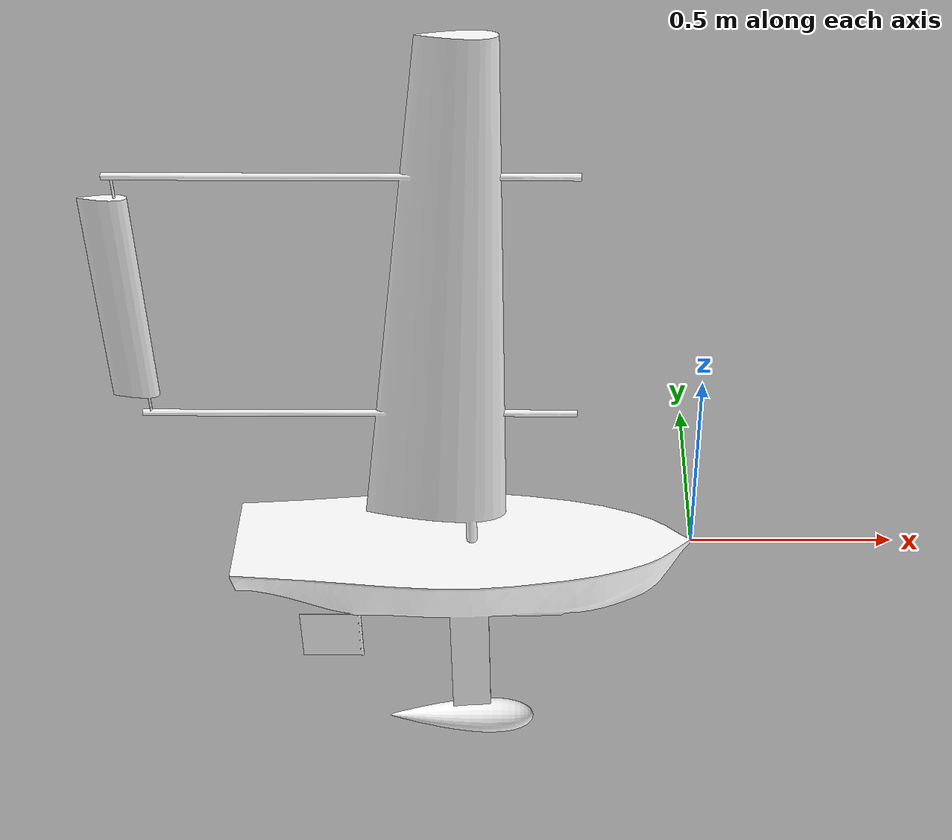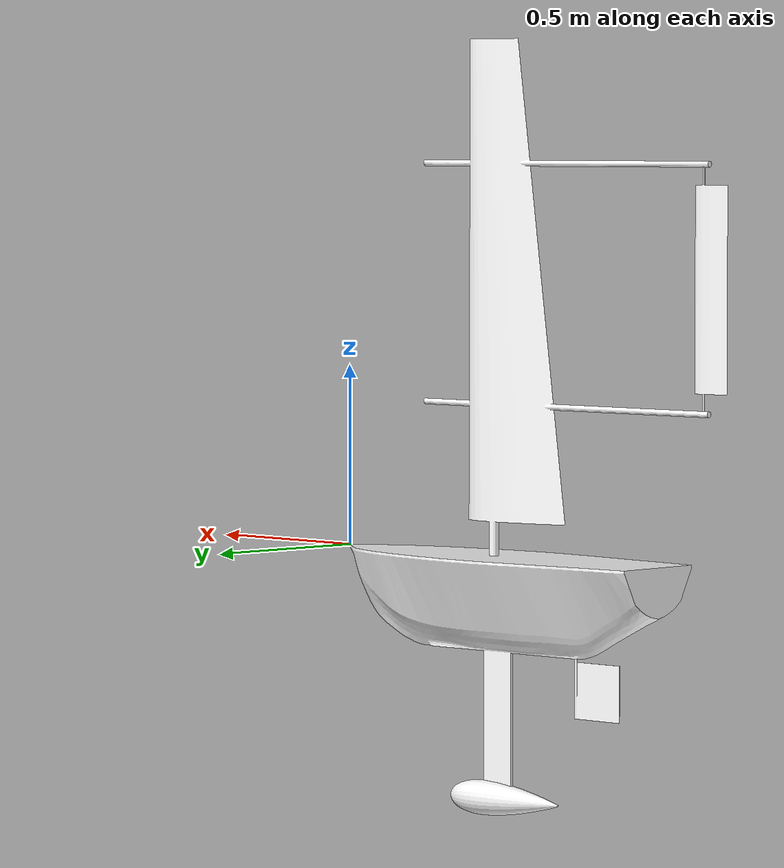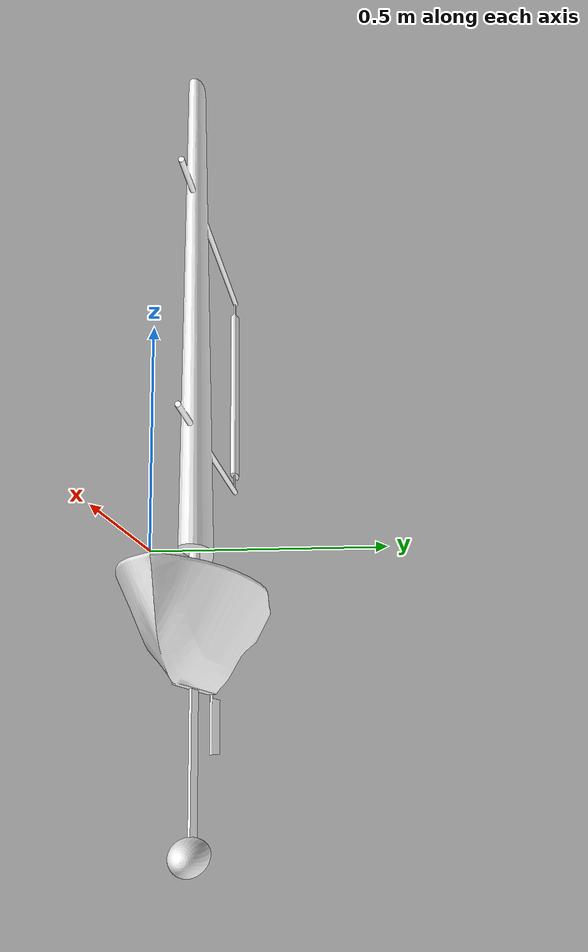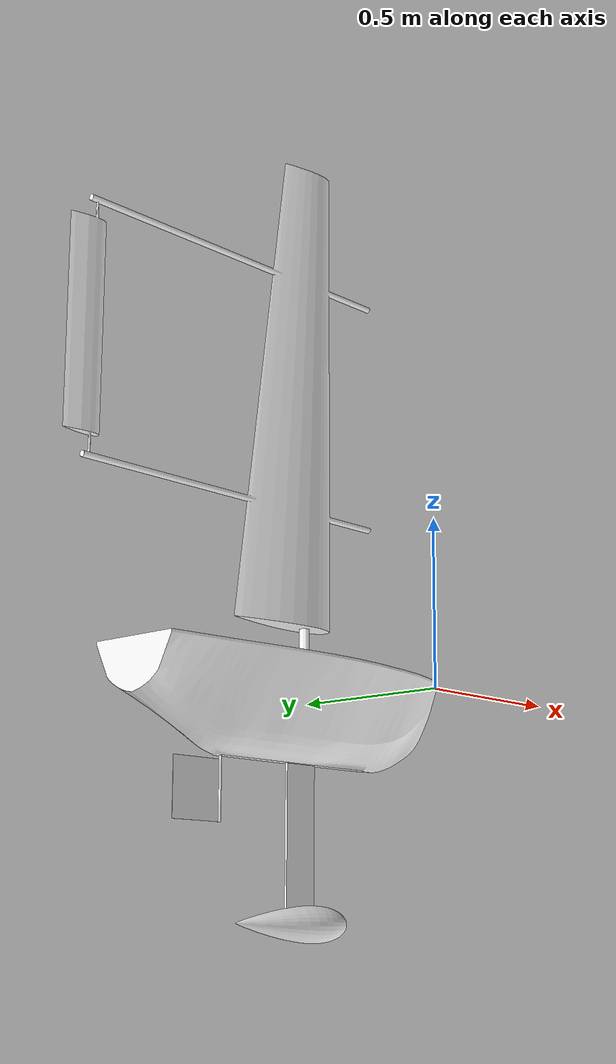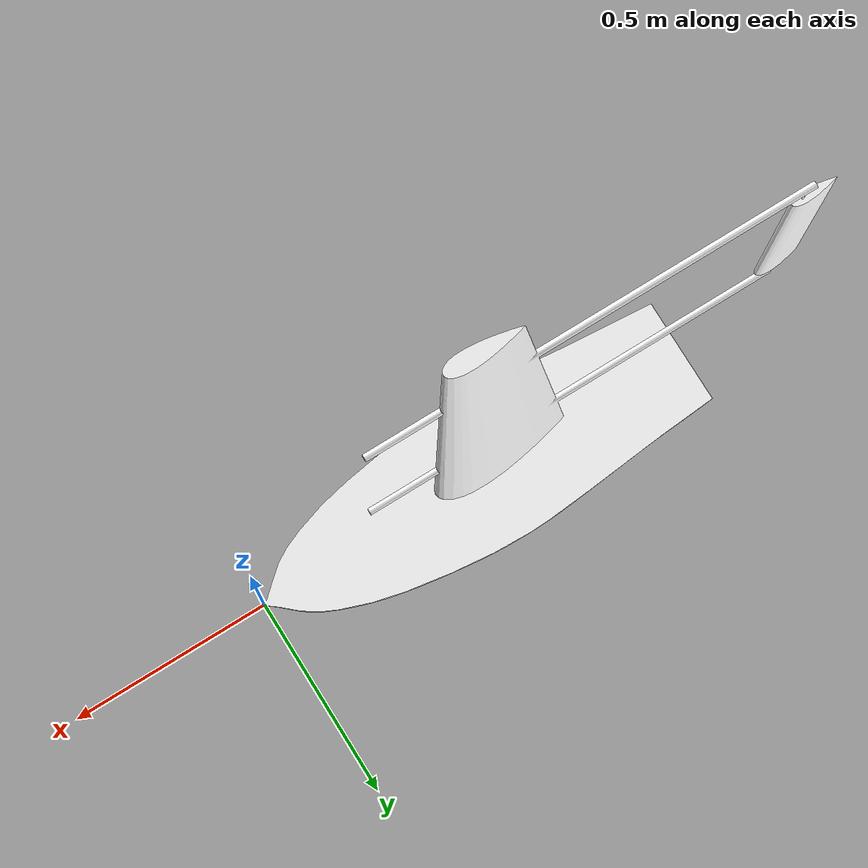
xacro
<?xml version='1.0' encoding='UTF-8'?>
<robot xmlns:xacro="http://www.ros.org/wiki/xacro" xmlns:gz="http://gazebosim.org/schema" name="MODIMOOP">
  <xacro:arg name="model_name" default="none_mrg_modimoop"/>
  <xacro:arg name="keel_cp" default="-0.633 0 -0.351"/>
  <link name="hull_link">
    <inertial>
      <origin xyz="-0.633 0 -0.351" rpy="0 0 0"/>
      <mass value="22.44"/>
      <inertia ixx="1.96" ixy="0" ixz="-0.529" iyy="2.85" iyz="-0.001" izz="0.99"/>
    </inertial>
    <visual>
      <origin xyz="0 0 0" rpy="0 0 0"/>
      <geometry>
        <mesh filename="package://mrg_modimoop_description/models/meshes/hull_link.STL"/>
      </geometry>
      <material name="">
        <color rgba="1 1 1 1"/>
      </material>
    </visual>
    <!-- Do not use the hull_hydro_100 mesh, it gives poor results. Generally, 200+ gives good hydrodynamic results but slow downs happen quickly -->
    <collision name="hull_collision">
      <origin xyz="0 0 0" rpy="0 0 0"/>
      <geometry>
        <mesh filename="package://mrg_modimoop_description/models/meshes/hull_hydro_200.STL"/>
      </geometry>
    </collision>
    <!-- Consider using this collision where perfect accuracy is fine initially (i.e. training models or something) -->
  </link>
  <link name="wingsail_link">
    <inertial>
      <origin xyz="0 0 0.559" rpy="0 0 0"/>
      <mass value="4.181"/>
      <inertia ixx="0.441" ixy="0" ixz="-0.029" iyy="0.668" iyz="0" izz="0.23"/>
    </inertial>
    <visual>
      <origin xyz="0 0 0" rpy="0 0 0"/>
      <geometry>
        <mesh filename="package://mrg_modimoop_description/models/meshes/wingsail_link.STL"/>
      </geometry>
      <material name="">
        <color rgba="1 1 1 1"/>
      </material>
    </visual>
    <collision name="wingsail_collision">
      <origin xyz="0 0 0" rpy="0 0 0"/>
      <geometry>
        <mesh filename="package://mrg_modimoop_description/models/meshes/wingsail_link.STL"/>
      </geometry>
    </collision>
  </link>
  <joint name="wingsail_joint" type="continuous">
    <origin xyz="-0.55 0 0" rpy="0 0 0"/>
    <parent link="hull_link"/>
    <child link="wingsail_link"/>
    <axis xyz="0 0 1"/>
    <dynamics damping="0.2" friction="0.05"/>
  </joint>
  <link name="tailwing_link">
    <inertial>
      <origin xyz="-0.017 0 -0.016" rpy="0 0 0"/>
      <mass value="0.201"/>
      <inertia ixx="0.006" ixy="0" ixz="0" iyy="0.006" iyz="0" izz="0.00001"/>
    </inertial>
    <visual>
      <origin xyz="0 0 0" rpy="0 0 0"/>
      <geometry>
        <mesh filename="package://mrg_modimoop_description/models/meshes/tailwing_link.STL"/>
      </geometry>
      <material name="">
        <color rgba="1 1 1 1"/>
      </material>
    </visual>
    <collision name="tailwing_collision">
      <origin xyz="0 0 0" rpy="0 0 0"/>
      <geometry>
        <mesh filename="package://mrg_modimoop_description/models/meshes/tailwing_link.STL"/>
      </geometry>
    </collision>
  </link>
  <joint name="tailwing_joint" type="revolute">
    <origin xyz="-0.7485 0 0.73529" rpy="0 0 0"/>
    <parent link="wingsail_link"/>
    <child link="tailwing_link"/>
    <axis xyz="0 0 -1"/>
    <limit lower="-0.785" upper="0.785" effort="1.0" velocity="0.2"/>
    <dynamics damping="0.2" friction="0.05"/>
  </joint>
  <link name="rudder_link">
    <inertial>
      <origin xyz="0 0 0" rpy="0 0 0"/>
      <mass value="0.34"/>
      <inertia ixx="0.001" ixy="0" ixz="0" iyy="0.001" iyz="0" izz="0.001"/>
    </inertial>
    <visual>
      <origin xyz="0 0 0" rpy="0 0 0"/>
      <geometry>
        <mesh filename="package://mrg_modimoop_description/models/meshes/rudder_link.STL"/>
      </geometry>
      <material name="">
        <color rgba="1 1 1 1"/>
      </material>
    </visual>
    <collision name="rudder_collision">
      <origin xyz="0 0 0" rpy="0 0 0"/>
      <geometry>
        <mesh filename="package://mrg_modimoop_description/models/meshes/rudder_link.STL"/>
      </geometry>
    </collision>
  </link>
  <joint name="rudder_joint" type="revolute">
    <origin xyz="-0.850348439870171 0 -0.25961" rpy="0 0 0"/>
    <parent link="hull_link"/>
    <child link="rudder_link"/>
    <axis xyz="0 0 1"/>
    <limit lower="-0.785" upper="0.785" effort="1.0" velocity="0.2"/>
    <dynamics damping="0.2" friction="0.05"/>
  </joint>
  <link name="imu_link"/>
  <joint name="imu_mount" type="fixed">
    <parent link="hull_link"/>
    <child link="imu_link"/>
    <origin xyz="-0.675 -0.005 -0.2" rpy="0 0 0"/>
  </joint>
  <link name="gps_link"/>
  <joint name="gps_mount" type="fixed">
    <parent link="hull_link"/>
    <child link="gps_link"/>
    <origin xyz="-0.6 -0.005 0.1" rpy="0 0 0"/>
  </joint>
  <link name="anemometer_link"/>
  <joint name="anemometer_mount" type="fixed">
    <parent link="hull_link"/>
    <child link="anemometer_link"/>
    <origin xyz="-0.6 -0.005 0.35" rpy="0 0 3.141592653589793"/>
  </joint>
  <link name="mag_link"/>
  <joint name="mag_mount" type="fixed">
    <parent link="hull_link"/>
    <child link="mag_link"/>
    <origin xyz="-0.65 -0.005 -0.15" rpy="0 0 0"/>
  </joint>
  <gazebo>
    <plugin name="gz::sim::systems::SailLiftDrag" filename="asv_sim2-sail-lift-drag-system">
      <a0>0.0</a0>
      <cla>6.2832</cla>
      <alpha_stall>0.1592</alpha_stall>
      <cla_stall>-0.7083</cla_stall>
      <cda>0.63662</cda>
      <area>0.396</area>
      <fluid_density>1.225</fluid_density>
      <forward>1 0 0</forward>
      <upward>0 1 0</upward>
      <cp>-0.05 0 0.559</cp>
      <link_name>wingsail_link</link_name>
      <radial_symmetry>1</radial_symmetry>
      <topic>lift_drag</topic>
    </plugin>
    <plugin name="gz::sim::systems::SailLiftDrag" filename="asv_sim2-sail-lift-drag-system">
      <a0>0.0</a0>
      <cla>6.2832</cla>
      <alpha_stall>0.1592</alpha_stall>
      <cla_stall>-0.7083</cla_stall>
      <cda>0.63662</cda>
      <area>0.05</area>
      <fluid_density>1.225</fluid_density>
      <forward>1 0 0</forward>
      <upward>0 1 0</upward>
      <cp>-0.017 0 -0.016</cp>
      <link_name>tailwing_link</link_name>
      <radial_symmetry>1</radial_symmetry>
      <topic>lift_drag</topic>
    </plugin>
    <plugin name="gz::sim::systems::FoilLiftDrag" filename="asv_sim2-foil-lift-drag-system">
      <a0>0.0</a0>
      <cla>6.2832</cla>
      <alpha_stall>0.1592</alpha_stall>
      <cla_stall>-0.7083</cla_stall>
      <cda>0.63662</cda>
      <area>0.17</area>
      <fluid_density>1025</fluid_density>
      <forward>1 0 0</forward>
      <upward>0 1 0</upward>
      <cp>$(arg keel_cp)</cp>
      <link_name>hull_link</link_name>
      <radial_symmetry>1</radial_symmetry>
      <topic>lift_drag</topic>
    </plugin>
    <plugin name="gz::sim::systems::FoilLiftDrag" filename="asv_sim2-foil-lift-drag-system">
      <a0>0.0</a0>
      <cla>5.0</cla>
      <alpha_stall>0.1592</alpha_stall>
      <cla_stall>-0.7083</cla_stall>
      <cda>0.63662</cda>
      <area>0.02322576</area>
      <fluid_density>1025</fluid_density>
      <forward>1 0 0</forward>
      <upward>0 1 0</upward>
      <cp>0 0 0</cp>
      <link_name>rudder_link</link_name>
      <radial_symmetry>1</radial_symmetry>
      <topic>lift_drag</topic>
    </plugin>
    <plugin filename="gz-waves1-hydrodynamics-system" name="gz::sim::systems::Hydrodynamics">
      <enable>$(arg model_name)::hull_link</enable>
      <hydrodynamics>
        <damping_on>1</damping_on>
        <viscous_drag_on>1</viscous_drag_on>
        <pressure_drag_on>1</pressure_drag_on>
      </hydrodynamics>
      <markers>
        <update_rate>10</update_rate>
        <water_patch>0</water_patch>
        <waterline>0</waterline>
        <underwater_surface>0</underwater_surface>
      </markers>
    </plugin>
  </gazebo>
  <gazebo reference="imu_link">
    <sensor name="imu_sensor" type="imu">
      <always_on>1</always_on>
      <update_rate>200</update_rate>
      <visualize>0</visualize>
      <topic>/modimoop/imu</topic>
      <gz_frame_id>imu_link</gz_frame_id>
      <pose>0 0 0 0 0 -1.570796327</pose>
      <imu>
        <angular_velocity>
          <x>
            <noise type="gaussian">
              <mean>0</mean>
              <stddev>0.0002</stddev>
            </noise>
          </x>
          <y>
            <noise type="gaussian">
              <mean>0</mean>
              <stddev>0.0002</stddev>
            </noise>
          </y>
          <z>
            <noise type="gaussian">
              <mean>0</mean>
              <stddev>0.0002</stddev>
            </noise>
          </z>
        </angular_velocity>
        <linear_acceleration>
          <x>
            <noise type="gaussian">
              <mean>0</mean>
              <stddev>0.01</stddev>
            </noise>
          </x>
          <y>
            <noise type="gaussian">
              <mean>0</mean>
              <stddev>0.01</stddev>
            </noise>
          </y>
          <z>
            <noise type="gaussian">
              <mean>0</mean>
              <stddev>0.01</stddev>
            </noise>
          </z>
        </linear_acceleration>
        <orientation>
          <x>
            <noise type="gaussian">
              <mean>0</mean>
              <stddev>0.01</stddev>
            </noise>
          </x>
          <y>
            <noise type="gaussian">
              <mean>0</mean>
              <stddev>0.01</stddev>
            </noise>
          </y>
          <z>
            <noise type="gaussian">
              <mean>0</mean>
              <stddev>0.01</stddev>
            </noise>
          </z>
          <w>
            <noise type="gaussian">
              <mean>0</mean>
              <stddev>0.01</stddev>
            </noise>
          </w>
        </orientation>
      </imu>
    </sensor>
  </gazebo>
  <gazebo reference="anemometer_link">
    <sensor name="anemometer" type="custom" gz:type="anemometer">
      <always_on>1</always_on>
      <update_rate>30</update_rate>
      <topic>anemometer</topic>
      <gz_frame_id>anemometer_link</gz_frame_id>
      <pose>0 0 0 0 0 0</pose>
      <gz:anemometer>
      </gz:anemometer>
    </sensor>
  </gazebo>
  <gazebo reference="gps_link">
    <sensor name="gps_sensor" type="navsat">
      <always_on>1</always_on>
      <update_rate>10</update_rate>
      <topic>/modimoop/navsat</topic>
      <gz_frame_id>gps_link</gz_frame_id>
      <pose>0 0 0 0 0 -1.570796327</pose>
      <visualize>0</visualize>
    </sensor>
  </gazebo>
  <gazebo reference="mag_link">
    <sensor name="mag_sensor" type="magnetometer">
      <always_on>1</always_on>
      <update_rate>50</update_rate>
      <visualize>0</visualize>
      <topic>/modimoop/mag</topic>
      <gz_frame_id>mag_link</gz_frame_id>
      <pose>0 0 0 0 0 -1.570796327</pose>
      <magnetometer/>
    </sensor>
  </gazebo>
  <gazebo>
    <plugin filename="gz-sim-joint-state-publisher-system" name="gz::sim::systems::JointStatePublisher">
      <joint_name>wingsail_joint</joint_name>
      <joint_name>rudder_joint</joint_name>
      <joint_name>tailwing_joint</joint_name>
      <topic>/modimoop/joint_state</topic>
      <update_rate>50</update_rate>
    </plugin>
  </gazebo>
  <gazebo>
    <plugin filename="gz-sim-joint-position-controller-system" name="gz::sim::systems::JointPositionController">
      <joint_name>rudder_joint</joint_name>
      <topic>/modimoop/cmd/rudder_pos</topic>
    </plugin>
    <plugin filename="gz-sim-joint-position-controller-system" name="gz::sim::systems::JointPositionController">
      <joint_name>tailwing_joint</joint_name>
      <topic>/modimoop/cmd/backwing_pos</topic>
    </plugin>
  </gazebo>
</robot>
